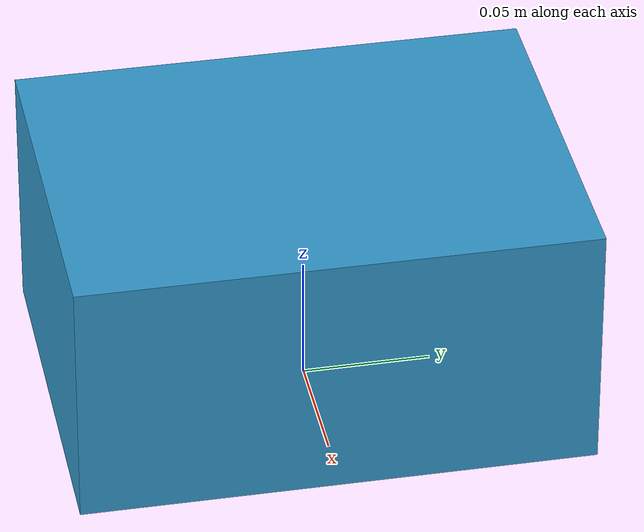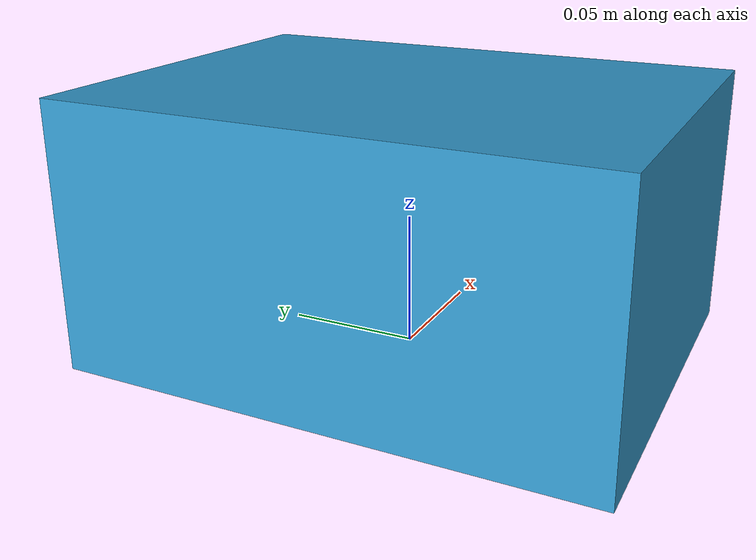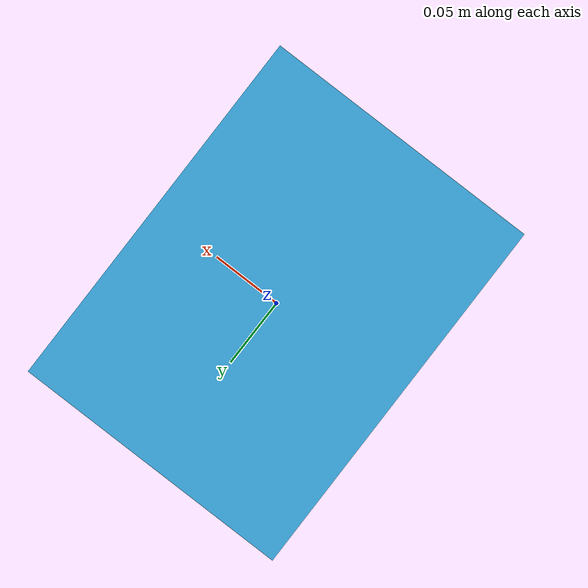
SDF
<?xml version="1.0"?>
<sdf version="1.7">
  <model name="foam_brick_large">
    <link name="base_link">
      <inertial>
        <pose>0 0 0.05 0 0 0</pose>
        <mass>0.336</mass>
        <inertia>
          <ixx>1.4e-3</ixx>
          <ixy>0</ixy>
          <ixz>0</ixz>
          <iyy>9.1e-4</iyy>
          <iyz>0</iyz>
          <izz>1.75e-3</izz>
        </inertia>
      </inertial>
      <visual name="base_link">
        <pose>0 0 0.05 0 0 0</pose>
        <geometry>
          <box>
            <size>0.15 0.2 0.1</size>
          </box>
        </geometry>
        <material>
          <diffuse>0.2 0.6 0.8 1.0</diffuse>
        </material>
      </visual>
      <collision name="box_collision">
        <pose>0 0 0.05 0 0 0</pose>
        <geometry>
          <box>
            <size>0.148 0.198 0.098</size>
          </box>
        </geometry>
      </collision>
      <collision name="point_collision1">
        <pose>0.075 0.1 0 0 0 0</pose>
        <geometry>
          <sphere>
            <radius>1e-7</radius>
          </sphere>
        </geometry>
      </collision>
      <collision name="point_collision2">
        <pose>0.075 -0.1 0 0 0 0</pose>
        <geometry>
          <sphere>
            <radius>1e-7</radius>
          </sphere>
        </geometry>
      </collision>
      <collision name="point_collision3">
        <pose>-0.075 0.1 0 0 0 0</pose>
        <geometry>
          <sphere>
            <radius>1e-7</radius>
          </sphere>
        </geometry>
      </collision>
      <collision name="point_collision4">
        <pose>-0.075 -0.1 0 0 0 0</pose>
        <geometry>
          <sphere>
            <radius>1e-7</radius>
          </sphere>
        </geometry>
      </collision>
      <collision name="point_collision5">
        <pose>0.075 0.1 0.1 0 0 0</pose>
        <geometry>
          <sphere>
            <radius>1e-7</radius>
          </sphere>
        </geometry>
      </collision>
      <collision name="point_collision6">
        <pose>0.075 -0.1 0.1 0 0 0</pose>
        <geometry>
          <sphere>
            <radius>1e-7</radius>
          </sphere>
        </geometry>
      </collision>
      <collision name="point_collision7">
        <pose>-0.075 0.1 0.1 0 0 0</pose>
        <geometry>
          <sphere>
            <radius>1e-7</radius>
          </sphere>
        </geometry>
      </collision>
      <collision name="point_collision8">
        <pose>-0.075 -0.1 0.1 0 0 0</pose>
        <geometry>
          <sphere>
            <radius>1e-7</radius>
          </sphere>
        </geometry>
      </collision>
    </link>
  </model>
</sdf>
